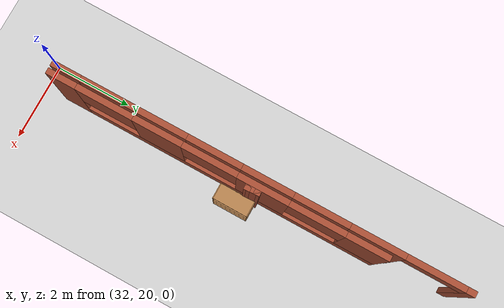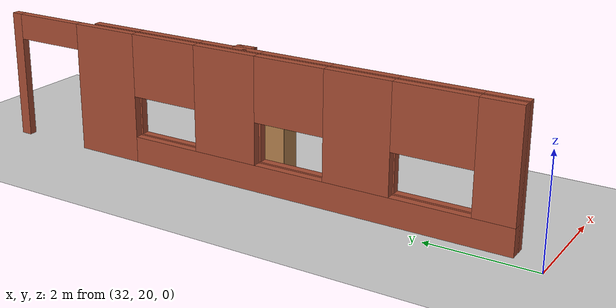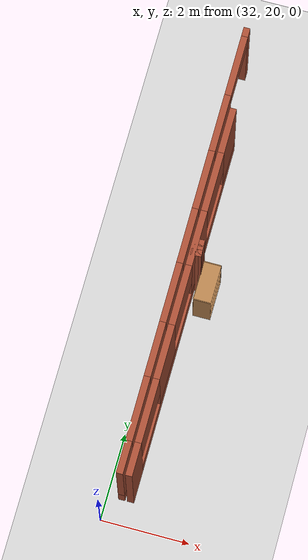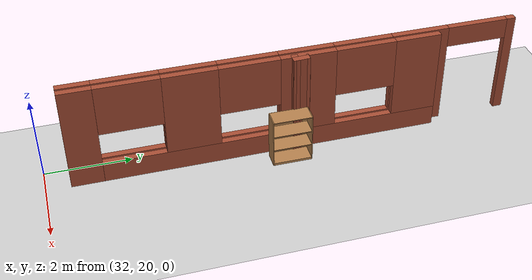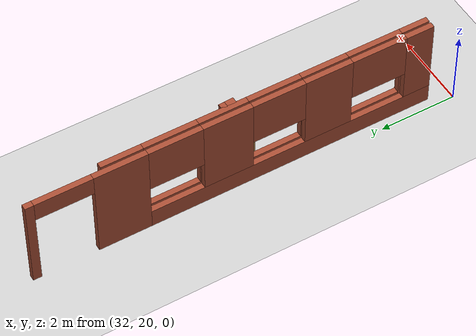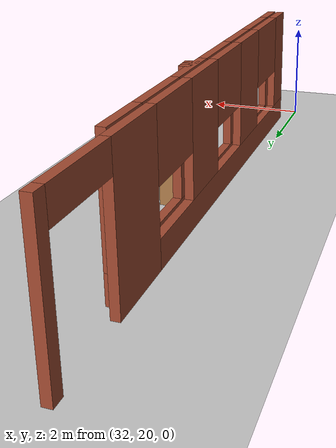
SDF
<sdf version="1.6">
 <world name="default">
  <model name="ground_plane">
   <static>1</static>
   <link name="link">
    <collision name="collision">
     <geometry><plane><normal>0 0 1</normal><size>100 100</size></plane></geometry>
     <surface><friction><ode><mu>100</mu><mu2>50</mu2></ode></friction></surface>
    </collision>
    <visual name="visual">
     <cast_shadows>0</cast_shadows>
     <geometry><plane><normal>0 0 1</normal><size>100 100</size></plane></geometry>
     <material>
      <script><uri>file://media/materials/scripts/gazebo.material</uri><name>Gazebo/Grey</name></script>
     </material>
    </visual>
   </link>
  </model>
  <model name="CVSSP">
   <pose>23.8714 24.094 0 0 -0 0</pose>
   <link name="Wall_815">
    <collision name="Wall_815_Collision">
     <geometry><box><size>0.199149 0.15 2.5</size></box></geometry>
     <pose>0 0 1.25 0 -0 0</pose>
    </collision>
    <visual name="Wall_815_Visual">
     <pose>0 0 1.25 0 -0 0</pose>
     <geometry><box><size>0.199149 0.15 2.5</size></box></geometry>
     <material>
      <script><uri>file://media/materials/scripts/gazebo.material</uri><name>Gazebo/Bricks</name></script>
      <ambient>1 1 1 1</ambient>
     </material>
    </visual>
    <pose>8.74892 1.83972 0 0 -0 0</pose>
   </link>
   <link name="Wall_816">
    <collision name="Wall_816_Collision">
     <geometry><box><size>0.384892 0.15 2.5</size></box></geometry>
     <pose>0 0 1.25 0 -0 0</pose>
    </collision>
    <visual name="Wall_816_Visual">
     <pose>0 0 1.25 0 -0 0</pose>
     <geometry><box><size>0.384892 0.15 2.5</size></box></geometry>
     <material>
      <script><uri>file://media/materials/scripts/gazebo.material</uri><name>Gazebo/Bricks</name></script>
      <ambient>1 1 1 1</ambient>
     </material>
    </visual>
    <pose>8.77916 1.72252 0 0 0 -1.52245</pose>
   </link>
   <link name="Wall_817">
    <collision name="Wall_817_Collision">
     <geometry><box><size>0.24482 0.15 2.5</size></box></geometry>
     <pose>0 0 1.25 0 -0 0</pose>
    </collision>
    <visual name="Wall_817_Visual">
     <pose>0 0 1.25 0 -0 0</pose>
     <geometry><box><size>0.24482 0.15 2.5</size></box></geometry>
     <material>
      <script><uri>file://media/materials/scripts/gazebo.material</uri><name>Gazebo/Bricks</name></script>
      <ambient>1 1 1 1</ambient>
     </material>
    </visual>
    <pose>8.73757 1.60343 0 0 0 -3.10161</pose>
   </link>
   <link name="Wall_89">
    <pose>8.45266 1.71622 0 0 0 -1.5708</pose>
    <visual name="Wall_89_Visual_0">
     <pose>-5.14167 0 1.25 0 -0 0</pose>
     <geometry><box><size>0.216665 0.15 2.5</size></box></geometry>
     <material>
      <script><uri>file://media/materials/scripts/gazebo.material</uri><name>Gazebo/Bricks</name></script>
      <ambient>1 1 1 1</ambient>
     </material>
    </visual>
    <collision name="Wall_89_Collision_0">
     <geometry><box><size>0.216665 0.15 2.5</size></box></geometry>
     <pose>-5.14167 0 1.25 0 -0 0</pose>
    </collision>
    <visual name="Wall_89_Visual_1">
     <pose>-2.91109 0 1.25 0 -0 0</pose>
     <geometry><box><size>1.35565 0.15 2.5</size></box></geometry>
     <material>
      <script><uri>file://media/materials/scripts/gazebo.material</uri><name>Gazebo/Bricks</name></script>
      <ambient>1 1 1 1</ambient>
     </material>
    </visual>
    <collision name="Wall_89_Collision_1">
     <geometry><box><size>1.35565 0.15 2.5</size></box></geometry>
     <pose>-2.91109 0 1.25 0 -0 0</pose>
    </collision>
    <visual name="Wall_89_Visual_2">
     <pose>1.50837 0 0.25 0 -0 0</pose>
     <geometry><box><size>7.48326 0.15 0.5</size></box></geometry>
     <material>
      <script><uri>file://media/materials/scripts/gazebo.material</uri><name>Gazebo/Bricks</name></script>
      <ambient>1 1 1 1</ambient>
     </material>
    </visual>
    <collision name="Wall_89_Collision_2">
     <geometry><box><size>7.48326 0.15 0.5</size></box></geometry>
     <pose>1.50837 0 0.25 0 -0 0</pose>
    </collision>
    <visual name="Wall_89_Visual_3">
     <pose>-0.207681 0 1.5 0 -0 0</pose>
     <geometry><box><size>1.28154 0.15 2</size></box></geometry>
     <material>
      <script><uri>file://media/materials/scripts/gazebo.material</uri><name>Gazebo/Bricks</name></script>
      <ambient>1 1 1 1</ambient>
     </material>
    </visual>
    <collision name="Wall_89_Collision_3">
     <geometry><box><size>1.28154 0.15 2</size></box></geometry>
     <pose>-0.207681 0 1.5 0 -0 0</pose>
    </collision>
    <visual name="Wall_89_Visual_4">
     <pose>2.43389 0 1.5 0 -0 0</pose>
     <geometry><box><size>1.2518 0.15 2</size></box></geometry>
     <material>
      <script><uri>file://media/materials/scripts/gazebo.material</uri><name>Gazebo/Bricks</name></script>
      <ambient>1 1 1 1</ambient>
     </material>
    </visual>
    <collision name="Wall_89_Collision_4">
     <geometry><box><size>1.2518 0.15 2</size></box></geometry>
     <pose>2.43389 0 1.5 0 -0 0</pose>
    </collision>
    <visual name="Wall_89_Visual_5">
     <pose>4.882 0 1.5 0 -0 0</pose>
     <geometry><box><size>0.736008 0.15 2</size></box></geometry>
     <material>
      <script><uri>file://media/materials/scripts/gazebo.material</uri><name>Gazebo/Bricks</name></script>
      <ambient>1 1 1 1</ambient>
     </material>
    </visual>
    <collision name="Wall_89_Collision_5">
     <geometry><box><size>0.736008 0.15 2</size></box></geometry>
     <pose>4.882 0 1.5 0 -0 0</pose>
    </collision>
    <visual name="Wall_89_Visual_6">
     <pose>-1.54086 0 1.9 0 -0 0</pose>
     <geometry><box><size>1.38481 0.15 1.2</size></box></geometry>
     <material>
      <script><uri>file://media/materials/scripts/gazebo.material</uri><name>Gazebo/Bricks</name></script>
      <ambient>1 1 1 1</ambient>
     </material>
    </visual>
    <collision name="Wall_89_Collision_6">
     <geometry><box><size>1.38481 0.15 1.2</size></box></geometry>
     <pose>-1.54086 0 1.9 0 -0 0</pose>
    </collision>
    <visual name="Wall_89_Visual_7">
     <pose>1.12054 0 1.9 0 -0 0</pose>
     <geometry><box><size>1.3749 0.15 1.2</size></box></geometry>
     <material>
      <script><uri>file://media/materials/scripts/gazebo.material</uri><name>Gazebo/Bricks</name></script>
      <ambient>1 1 1 1</ambient>
     </material>
    </visual>
    <collision name="Wall_89_Collision_7">
     <geometry><box><size>1.3749 0.15 1.2</size></box></geometry>
     <pose>1.12054 0 1.9 0 -0 0</pose>
    </collision>
    <visual name="Wall_89_Visual_8">
     <pose>3.78689 0 1.9 0 -0 0</pose>
     <geometry><box><size>1.4542 0.15 1.2</size></box></geometry>
     <material>
      <script><uri>file://media/materials/scripts/gazebo.material</uri><name>Gazebo/Bricks</name></script>
      <ambient>1 1 1 1</ambient>
     </material>
    </visual>
    <collision name="Wall_89_Collision_8">
     <geometry><box><size>1.4542 0.15 1.2</size></box></geometry>
     <pose>3.78689 0 1.9 0 -0 0</pose>
    </collision>
    <visual name="Wall_89_Visual_9">
     <pose>-4.31112 0 2.25 0 -0 0</pose>
     <geometry><box><size>1.44442 0.15 0.5</size></box></geometry>
     <material>
      <script><uri>file://media/materials/scripts/gazebo.material</uri><name>Gazebo/Bricks</name></script>
      <ambient>1 1 1 1</ambient>
     </material>
    </visual>
    <collision name="Wall_89_Collision_9">
     <geometry><box><size>1.44442 0.15 0.5</size></box></geometry>
     <pose>-4.31112 0 2.25 0 -0 0</pose>
    </collision>
   </link>
   <link name="Wall_94">
    <pose>8.65296 0.7494 0 0 -0 1.57076</pose>
    <visual name="Wall_94_Visual_0">
     <pose>-3.90893 0 1.25 0 -0 0</pose>
     <geometry><box><size>0.743346 0.15 2.5</size></box></geometry>
     <material>
      <script><uri>file://media/materials/scripts/gazebo.material</uri><name>Gazebo/Bricks</name></script>
      <ambient>1 1 1 1</ambient>
     </material>
    </visual>
    <collision name="Wall_94_Collision_0">
     <geometry><box><size>0.743346 0.15 2.5</size></box></geometry>
     <pose>-3.90893 0 1.25 0 -0 0</pose>
    </collision>
    <visual name="Wall_94_Visual_1">
     <pose>0.371673 0 0.25 0 -0 0</pose>
     <geometry><box><size>7.81786 0.15 0.5</size></box></geometry>
     <material>
      <script><uri>file://media/materials/scripts/gazebo.material</uri><name>Gazebo/Bricks</name></script>
      <ambient>1 1 1 1</ambient>
     </material>
    </visual>
    <collision name="Wall_94_Collision_1">
     <geometry><box><size>7.81786 0.15 0.5</size></box></geometry>
     <pose>0.371673 0 0.25 0 -0 0</pose>
    </collision>
    <visual name="Wall_94_Visual_2">
     <pose>-1.47202 0 1.5 0 -0 0</pose>
     <geometry><box><size>1.24189 0.15 2</size></box></geometry>
     <material>
      <script><uri>file://media/materials/scripts/gazebo.material</uri><name>Gazebo/Bricks</name></script>
      <ambient>1 1 1 1</ambient>
     </material>
    </visual>
    <collision name="Wall_94_Collision_2">
     <geometry><box><size>1.24189 0.15 2</size></box></geometry>
     <pose>-1.47202 0 1.5 0 -0 0</pose>
    </collision>
    <visual name="Wall_94_Visual_3">
     <pose>1.1745 0 1.5 0 -0 0</pose>
     <geometry><box><size>1.28154 0.15 2</size></box></geometry>
     <material>
      <script><uri>file://media/materials/scripts/gazebo.material</uri><name>Gazebo/Bricks</name></script>
      <ambient>1 1 1 1</ambient>
     </material>
    </visual>
    <collision name="Wall_94_Collision_3">
     <geometry><box><size>1.28154 0.15 2</size></box></geometry>
     <pose>1.1745 0 1.5 0 -0 0</pose>
    </collision>
    <visual name="Wall_94_Visual_4">
     <pose>3.7453 0 1.5 0 -0 0</pose>
     <geometry><box><size>1.0706 0.15 2</size></box></geometry>
     <material>
      <script><uri>file://media/materials/scripts/gazebo.material</uri><name>Gazebo/Bricks</name></script>
      <ambient>1 1 1 1</ambient>
     </material>
    </visual>
    <collision name="Wall_94_Collision_4">
     <geometry><box><size>1.0706 0.15 2</size></box></geometry>
     <pose>3.7453 0 1.5 0 -0 0</pose>
    </collision>
    <visual name="Wall_94_Visual_5">
     <pose>-2.81511 0 1.9 0 -0 0</pose>
     <geometry><box><size>1.44429 0.15 1.2</size></box></geometry>
     <material>
      <script><uri>file://media/materials/scripts/gazebo.material</uri><name>Gazebo/Bricks</name></script>
      <ambient>1 1 1 1</ambient>
     </material>
    </visual>
    <collision name="Wall_94_Collision_5">
     <geometry><box><size>1.44429 0.15 1.2</size></box></geometry>
     <pose>-2.81511 0 1.9 0 -0 0</pose>
    </collision>
    <visual name="Wall_94_Visual_6">
     <pose>-0.158672 0 1.9 0 -0 0</pose>
     <geometry><box><size>1.38481 0.15 1.2</size></box></geometry>
     <material>
      <script><uri>file://media/materials/scripts/gazebo.material</uri><name>Gazebo/Bricks</name></script>
      <ambient>1 1 1 1</ambient>
     </material>
    </visual>
    <collision name="Wall_94_Collision_6">
     <geometry><box><size>1.38481 0.15 1.2</size></box></geometry>
     <pose>-0.158672 0 1.9 0 -0 0</pose>
    </collision>
    <visual name="Wall_94_Visual_7">
     <pose>2.51264 0 1.9 0 -0 0</pose>
     <geometry><box><size>1.39473 0.15 1.2</size></box></geometry>
     <material>
      <script><uri>file://media/materials/scripts/gazebo.material</uri><name>Gazebo/Bricks</name></script>
      <ambient>1 1 1 1</ambient>
     </material>
    </visual>
    <collision name="Wall_94_Collision_7">
     <geometry><box><size>1.39473 0.15 1.2</size></box></geometry>
     <pose>2.51264 0 1.9 0 -0 0</pose>
    </collision>
   </link>
   <static>1</static>
  </model>
  <model name="bookshelf_ply_wood">
   <link name="link">
    <inertial>
     <mass>1</mass>
     <inertia><ixx>1</ixx><ixy>0</ixy><ixz>0</ixz><iyy>1</iyy><iyz>0</iyz><izz>1</izz></inertia>
    </inertial>
    <gravity>0</gravity>
    <visual name="visual6">
     <pose>0 -0.195 0.43 0 -0 0</pose>
     <geometry><box><size>0.88 0.4 0.02</size></box></geometry>
     <material>
      <script><uri>file://media/materials/scripts/gazebo.material</uri><name>Gazebo/Wood</name></script>
      <shader type="pixel"><normal_map>__default__</normal_map></shader>
      <ambient>1 1 1 1</ambient>
      <diffuse>1 1 1 1</diffuse>
      <specular>0.2 0.2 0.2 1</specular>
      <emissive>0 0 0 1</emissive>
     </material>
    </visual>
    <visual name="visual7">
     <pose>0 -0.195 0.8 0 -0 0</pose>
     <geometry><box><size>0.88 0.4 0.02</size></box></geometry>
     <material>
      <script><uri>file://media/materials/scripts/gazebo.material</uri><name>Gazebo/Wood</name></script>
      <shader type="pixel"><normal_map>__default__</normal_map></shader>
      <ambient>1 1 1 1</ambient>
      <diffuse>1 1 1 1</diffuse>
      <specular>0.2 0.2 0.2 1</specular>
      <emissive>0 0 0 1</emissive>
     </material>
    </visual>
    <visual name="visual2">
     <pose>0.45 -0.195 0.6 0 -0 0</pose>
     <geometry><box><size>0.02 0.4 1.2</size></box></geometry>
     <material>
      <script><uri>file://media/materials/scripts/gazebo.material</uri><name>Gazebo/Wood</name></script>
      <shader type="pixel"><normal_map>__default__</normal_map></shader>
      <ambient>1 1 1 1</ambient>
      <diffuse>1 1 1 1</diffuse>
      <specular>0.2 0.2 0.2 1</specular>
      <emissive>0 0 0 1</emissive>
     </material>
    </visual>
    <visual name="visual4">
     <pose>0 -0.195 0.03 0 -0 0</pose>
     <geometry><box><size>0.88 0.4 0.06</size></box></geometry>
     <material>
      <script><uri>file://media/materials/scripts/gazebo.material</uri><name>Gazebo/Wood</name></script>
      <shader type="pixel"><normal_map>__default__</normal_map></shader>
      <ambient>1 1 1 1</ambient>
      <diffuse>1 1 1 1</diffuse>
      <specular>0.2 0.2 0.2 1</specular>
      <emissive>0 0 0 1</emissive>
     </material>
    </visual>
    <visual name="visual3">
     <pose>-0.45 -0.195 0.6 0 -0 0</pose>
     <geometry><box><size>0.02 0.4 1.2</size></box></geometry>
     <material>
      <script><uri>file://media/materials/scripts/gazebo.material</uri><name>Gazebo/Wood</name></script>
      <shader type="pixel"><normal_map>__default__</normal_map></shader>
      <ambient>1 1 1 1</ambient>
      <diffuse>1 1 1 1</diffuse>
      <specular>0.2 0.2 0.2 1</specular>
      <emissive>0 0 0 1</emissive>
     </material>
    </visual>
    <visual name="visual5">
     <pose>0 -0.195 1.19 0 -0 0</pose>
     <geometry><box><size>0.88 0.4 0.02</size></box></geometry>
     <material>
      <script><uri>file://media/materials/scripts/gazebo.material</uri><name>Gazebo/Wood</name></script>
      <shader type="pixel"><normal_map>__default__</normal_map></shader>
      <ambient>1 1 1 1</ambient>
      <diffuse>1 1 1 1</diffuse>
      <specular>0.2 0.2 0.2 1</specular>
      <emissive>0 0 0 1</emissive>
     </material>
    </visual>
    <visual name="visual1">
     <pose>0 0.005 0.6 0 -0 0</pose>
     <geometry><box><size>0.9 0.01 1.2</size></box></geometry>
     <material>
      <script><uri>file://media/materials/scripts/gazebo.material</uri><name>Gazebo/Wood</name></script>
      <shader type="pixel"><normal_map>__default__</normal_map></shader>
      <ambient>1 1 1 1</ambient>
      <diffuse>1 1 1 1</diffuse>
      <specular>0.2 0.2 0.2 1</specular>
      <emissive>0 0 0 1</emissive>
     </material>
    </visual>
    <collision name="back">
     <pose>0 0.005 0.6 0 -0 0</pose>
     <geometry><box><size>0.9 0.01 1.2</size></box></geometry>
     <surface>
      <friction>
       <ode><mu>1</mu><mu2>1</mu2><fdir1>0 0 0</fdir1><slip1>0</slip1><slip2>0</slip2></ode>
       <torsional>
        <coefficient>1</coefficient>
        <patch_radius>0</patch_radius>
        <surface_radius>0</surface_radius>
        <use_patch_radius>1</use_patch_radius>
        <ode><slip>0</slip></ode>
       </torsional>
      </friction>
      <bounce><restitution_coefficient>0</restitution_coefficient><threshold>1e+06</threshold></bounce>
      <contact>
       <collide_without_contact>0</collide_without_contact>
       <collide_without_contact_bitmask>1</collide_without_contact_bitmask>
       <collide_bitmask>1</collide_bitmask>
       <ode>
        <soft_cfm>0</soft_cfm>
        <soft_erp>0.2</soft_erp>
        <kp>1e+13</kp>
        <kd>1</kd>
        <max_vel>0.01</max_vel>
        <min_depth>0</min_depth>
       </ode>
       <bullet>
        <split_impulse>1</split_impulse>
        <split_impulse_penetration_threshold>-0.01</split_impulse_penetration_threshold>
        <soft_cfm>0</soft_cfm>
        <soft_erp>0.2</soft_erp>
        <kp>1e+13</kp>
        <kd>1</kd>
       </bullet>
      </contact>
     </surface>
    </collision>
    <collision name="left_side">
     <pose>0.45 -0.195 0.6 0 -0 0</pose>
     <geometry><box><size>0.02 0.4 1.2</size></box></geometry>
     <surface>
      <friction>
       <ode><mu>1</mu><mu2>1</mu2><fdir1>0 0 0</fdir1><slip1>0</slip1><slip2>0</slip2></ode>
       <torsional>
        <coefficient>1</coefficient>
        <patch_radius>0</patch_radius>
        <surface_radius>0</surface_radius>
        <use_patch_radius>1</use_patch_radius>
        <ode><slip>0</slip></ode>
       </torsional>
      </friction>
      <bounce><restitution_coefficient>0</restitution_coefficient><threshold>1e+06</threshold></bounce>
      <contact>
       <collide_without_contact>0</collide_without_contact>
       <collide_without_contact_bitmask>1</collide_without_contact_bitmask>
       <collide_bitmask>1</collide_bitmask>
       <ode>
        <soft_cfm>0</soft_cfm>
        <soft_erp>0.2</soft_erp>
        <kp>1e+13</kp>
        <kd>1</kd>
        <max_vel>0.01</max_vel>
        <min_depth>0</min_depth>
       </ode>
       <bullet>
        <split_impulse>1</split_impulse>
        <split_impulse_penetration_threshold>-0.01</split_impulse_penetration_threshold>
        <soft_cfm>0</soft_cfm>
        <soft_erp>0.2</soft_erp>
        <kp>1e+13</kp>
        <kd>1</kd>
       </bullet>
      </contact>
     </surface>
    </collision>
    <collision name="right_side">
     <pose>-0.45 -0.195 0.6 0 -0 0</pose>
     <geometry><box><size>0.02 0.4 1.2</size></box></geometry>
     <surface>
      <friction>
       <ode><mu>1</mu><mu2>1</mu2><fdir1>0 0 0</fdir1><slip1>0</slip1><slip2>0</slip2></ode>
       <torsional>
        <coefficient>1</coefficient>
        <patch_radius>0</patch_radius>
        <surface_radius>0</surface_radius>
        <use_patch_radius>1</use_patch_radius>
        <ode><slip>0</slip></ode>
       </torsional>
      </friction>
      <bounce><restitution_coefficient>0</restitution_coefficient><threshold>1e+06</threshold></bounce>
      <contact>
       <collide_without_contact>0</collide_without_contact>
       <collide_without_contact_bitmask>1</collide_without_contact_bitmask>
       <collide_bitmask>1</collide_bitmask>
       <ode>
        <soft_cfm>0</soft_cfm>
        <soft_erp>0.2</soft_erp>
        <kp>1e+13</kp>
        <kd>1</kd>
        <max_vel>0.01</max_vel>
        <min_depth>0</min_depth>
       </ode>
       <bullet>
        <split_impulse>1</split_impulse>
        <split_impulse_penetration_threshold>-0.01</split_impulse_penetration_threshold>
        <soft_cfm>0</soft_cfm>
        <soft_erp>0.2</soft_erp>
        <kp>1e+13</kp>
        <kd>1</kd>
       </bullet>
      </contact>
     </surface>
    </collision>
    <collision name="bottom">
     <pose>0 -0.195 0.03 0 -0 0</pose>
     <geometry><box><size>0.88 0.4 0.06</size></box></geometry>
     <surface>
      <friction>
       <ode><mu>1</mu><mu2>1</mu2><fdir1>0 0 0</fdir1><slip1>0</slip1><slip2>0</slip2></ode>
       <torsional>
        <coefficient>1</coefficient>
        <patch_radius>0</patch_radius>
        <surface_radius>0</surface_radius>
        <use_patch_radius>1</use_patch_radius>
        <ode><slip>0</slip></ode>
       </torsional>
      </friction>
      <bounce><restitution_coefficient>0</restitution_coefficient><threshold>1e+06</threshold></bounce>
      <contact>
       <collide_without_contact>0</collide_without_contact>
       <collide_without_contact_bitmask>1</collide_without_contact_bitmask>
       <collide_bitmask>1</collide_bitmask>
       <ode>
        <soft_cfm>0</soft_cfm>
        <soft_erp>0.2</soft_erp>
        <kp>1e+13</kp>
        <kd>1</kd>
        <max_vel>0.01</max_vel>
        <min_depth>0</min_depth>
       </ode>
       <bullet>
        <split_impulse>1</split_impulse>
        <split_impulse_penetration_threshold>-0.01</split_impulse_penetration_threshold>
        <soft_cfm>0</soft_cfm>
        <soft_erp>0.2</soft_erp>
        <kp>1e+13</kp>
        <kd>1</kd>
       </bullet>
      </contact>
     </surface>
    </collision>
    <collision name="top">
     <pose>0 -0.195 1.19 0 -0 0</pose>
     <geometry><box><size>0.88 0.4 0.02</size></box></geometry>
     <surface>
      <friction>
       <ode><mu>1</mu><mu2>1</mu2><fdir1>0 0 0</fdir1><slip1>0</slip1><slip2>0</slip2></ode>
       <torsional>
        <coefficient>1</coefficient>
        <patch_radius>0</patch_radius>
        <surface_radius>0</surface_radius>
        <use_patch_radius>1</use_patch_radius>
        <ode><slip>0</slip></ode>
       </torsional>
      </friction>
      <bounce><restitution_coefficient>0</restitution_coefficient><threshold>1e+06</threshold></bounce>
      <contact>
       <collide_without_contact>0</collide_without_contact>
       <collide_without_contact_bitmask>1</collide_without_contact_bitmask>
       <collide_bitmask>1</collide_bitmask>
       <ode>
        <soft_cfm>0</soft_cfm>
        <soft_erp>0.2</soft_erp>
        <kp>1e+13</kp>
        <kd>1</kd>
        <max_vel>0.01</max_vel>
        <min_depth>0</min_depth>
       </ode>
       <bullet>
        <split_impulse>1</split_impulse>
        <split_impulse_penetration_threshold>-0.01</split_impulse_penetration_threshold>
        <soft_cfm>0</soft_cfm>
        <soft_erp>0.2</soft_erp>
        <kp>1e+13</kp>
        <kd>1</kd>
       </bullet>
      </contact>
     </surface>
    </collision>
    <collision name="low_shelf">
     <pose>0 -0.195 0.43 0 -0 0</pose>
     <geometry><box><size>0.88 0.4 0.02</size></box></geometry>
     <surface>
      <friction>
       <ode><mu>1</mu><mu2>1</mu2><fdir1>0 0 0</fdir1><slip1>0</slip1><slip2>0</slip2></ode>
       <torsional>
        <coefficient>1</coefficient>
        <patch_radius>0</patch_radius>
        <surface_radius>0</surface_radius>
        <use_patch_radius>1</use_patch_radius>
        <ode><slip>0</slip></ode>
       </torsional>
      </friction>
      <bounce><restitution_coefficient>0</restitution_coefficient><threshold>1e+06</threshold></bounce>
      <contact>
       <collide_without_contact>0</collide_without_contact>
       <collide_without_contact_bitmask>1</collide_without_contact_bitmask>
       <collide_bitmask>1</collide_bitmask>
       <ode>
        <soft_cfm>0</soft_cfm>
        <soft_erp>0.2</soft_erp>
        <kp>1e+13</kp>
        <kd>1</kd>
        <max_vel>0.01</max_vel>
        <min_depth>0</min_depth>
       </ode>
       <bullet>
        <split_impulse>1</split_impulse>
        <split_impulse_penetration_threshold>-0.01</split_impulse_penetration_threshold>
        <soft_cfm>0</soft_cfm>
        <soft_erp>0.2</soft_erp>
        <kp>1e+13</kp>
        <kd>1</kd>
       </bullet>
      </contact>
     </surface>
    </collision>
    <collision name="high_shelf">
     <pose>0 -0.195 0.8 0 -0 0</pose>
     <geometry><box><size>0.88 0.4 0.02</size></box></geometry>
     <surface>
      <friction>
       <ode><mu>1</mu><mu2>1</mu2><fdir1>0 0 0</fdir1><slip1>0</slip1><slip2>0</slip2></ode>
       <torsional>
        <coefficient>1</coefficient>
        <patch_radius>0</patch_radius>
        <surface_radius>0</surface_radius>
        <use_patch_radius>1</use_patch_radius>
        <ode><slip>0</slip></ode>
       </torsional>
      </friction>
      <bounce><restitution_coefficient>0</restitution_coefficient><threshold>1e+06</threshold></bounce>
      <contact>
       <collide_without_contact>0</collide_without_contact>
       <collide_without_contact_bitmask>1</collide_without_contact_bitmask>
       <collide_bitmask>1</collide_bitmask>
       <ode>
        <soft_cfm>0</soft_cfm>
        <soft_erp>0.2</soft_erp>
        <kp>1e+13</kp>
        <kd>1</kd>
        <max_vel>0.01</max_vel>
        <min_depth>0</min_depth>
       </ode>
       <bullet>
        <split_impulse>1</split_impulse>
        <split_impulse_penetration_threshold>-0.01</split_impulse_penetration_threshold>
        <soft_cfm>0</soft_cfm>
        <soft_erp>0.2</soft_erp>
        <kp>1e+13</kp>
        <kd>1</kd>
       </bullet>
      </contact>
     </surface>
    </collision>
   </link>
   <static>1</static>
   <pose>32.7239 25.5103 0 0 -0 1.56767</pose>
  </model>
 </world>
</sdf>
